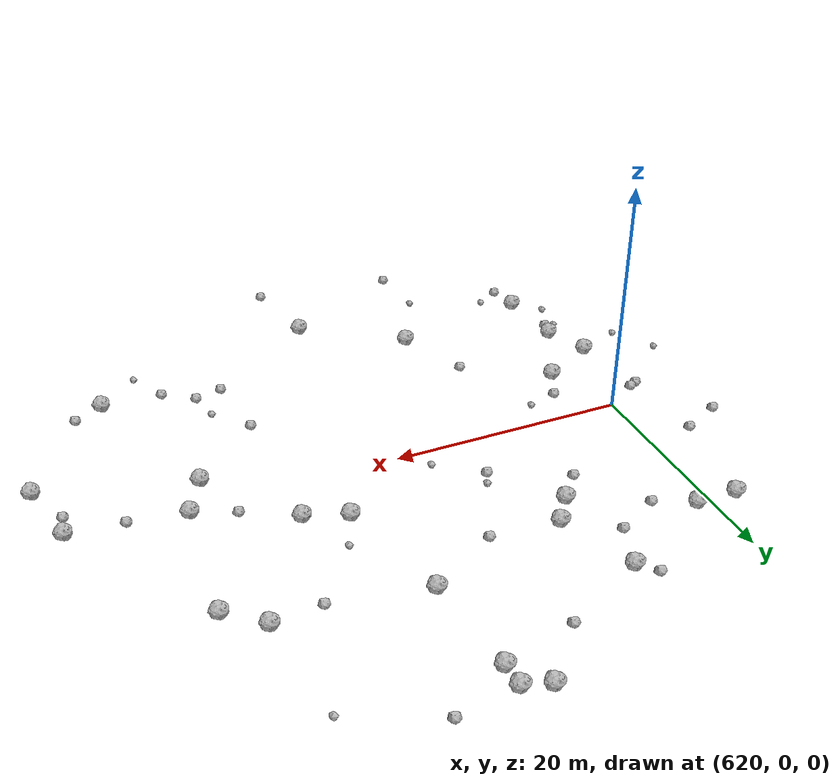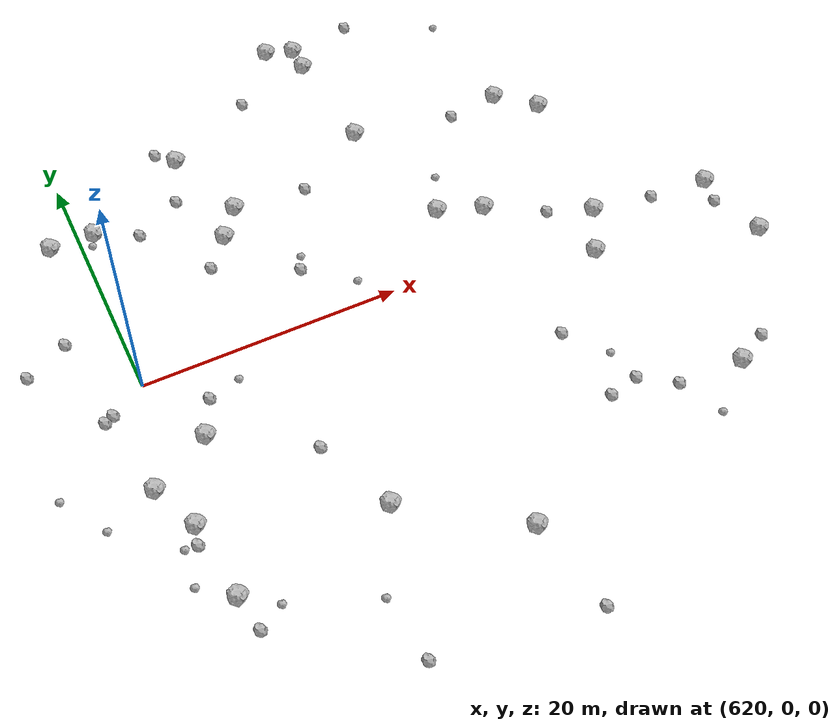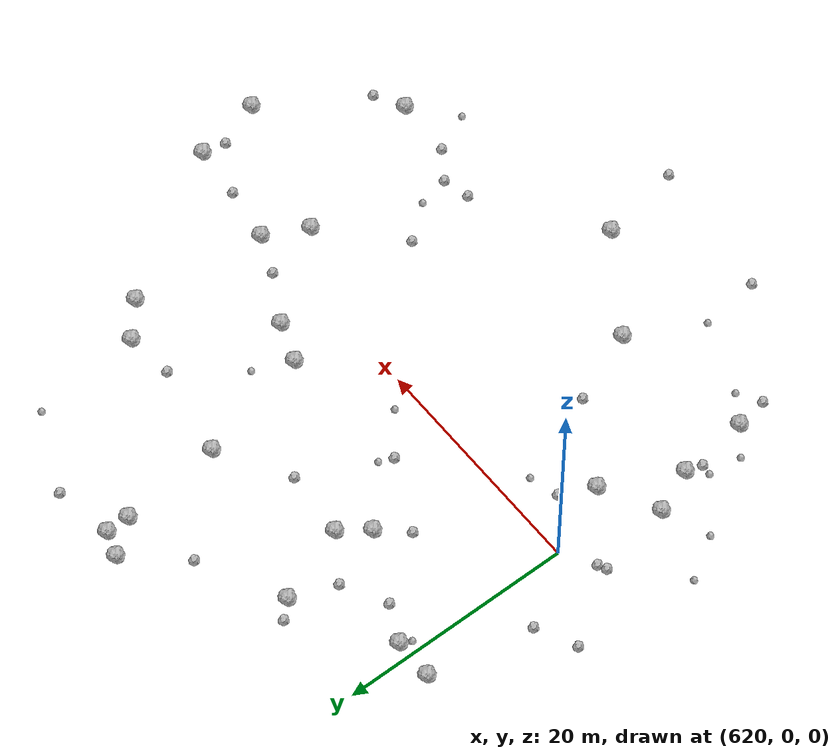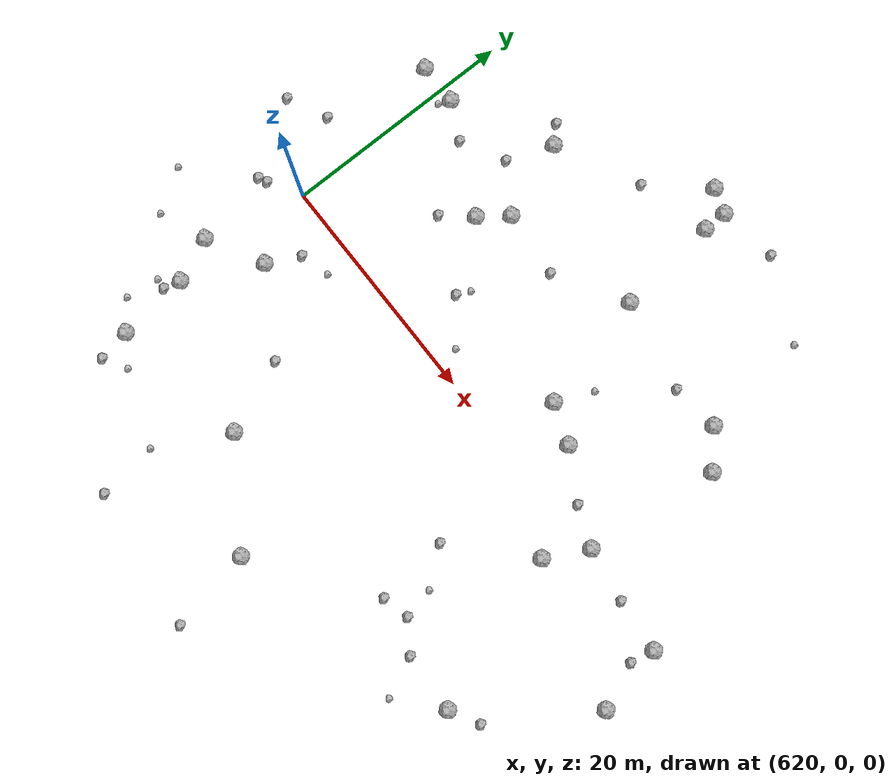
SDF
<sdf version="1.6">
 <world name="default">
  <include><uri>model://sun</uri></include>
  <model name="rock1_16_3">
   <include><uri>model://rock1</uri><pose>619.50246957743 -12.284722842281077 0.5 0 0 0</pose></include>
  </model>
  <model name="rock1_16_4">
   <include><uri>model://rock1</uri><pose>642.8708877441953 24.21478443247169 0.5 0 0 0</pose></include>
  </model>
  <model name="rock1_16_5">
   <include><uri>model://rock1</uri><pose>655.5129780728366 -3.2031607006495406 0.5 0 0 0</pose></include>
  </model>
  <model name="rock1_16_6">
   <include><uri>model://rock1</uri><pose>617.931315242425 -8.560792233907584 0.5 0 0 0</pose></include>
  </model>
  <model name="rock1_16_7">
   <include><uri>model://rock1</uri><pose>632.0664180737031 12.404886205247237 0.5 0 0 0</pose></include>
  </model>
  <model name="rock1_16_8">
   <include><uri>model://rock1</uri><pose>657.3818263120024 0.4045115208634229 0.5 0 0 0</pose></include>
  </model>
  <model name="rock1_16_9">
   <include><uri>model://rock1</uri><pose>620.144063395537 -18.355663517907434 0.5 0 0 0</pose></include>
  </model>
  <model name="rock1_16_10">
   <include><uri>model://rock1</uri><pose>655.8338261542239 14.417747060775277 0.5 0 0 0</pose></include>
  </model>
  <model name="rock1_16_11">
   <include><uri>model://rock1</uri><pose>643.7486379790425 15.499873581567194 0.5 0 0 0</pose></include>
  </model>
  <model name="rock1_16_12">
   <include><uri>model://rock1</uri><pose>640.3903474918646 -22.042270062142226 0.5 0 0 0</pose></include>
  </model>
  <model name="rock1_16_13">
   <include><uri>model://rock1</uri><pose>649.7327665309838 4.20892458357865 0.5 0 0 0</pose></include>
  </model>
  <model name="rock1_16_14">
   <include><uri>model://rock1</uri><pose>666.7485705954654 -0.7734943483179606 0.5 0 0 0</pose></include>
  </model>
  <model name="rock1_16_15">
   <include><uri>model://rock1</uri><pose>668.0074020674251 -6.689599194196749 0.5 0 0 0</pose></include>
  </model>
  <model name="rock1_16_16">
   <include><uri>model://rock1</uri><pose>658.6672957909252 11.935079782609208 0.5 0 0 0</pose></include>
  </model>
  <model name="rock1_16_17">
   <include><uri>model://rock1</uri><pose>646.2753339569658 5.470345640044876 0.5 0 0 0</pose></include>
  </model>
  <model name="rock1_16_18">
   <include><uri>model://rock1</uri><pose>622.6373727309693 -5.973755493576412 0.5 0 0 0</pose></include>
  </model>
  <model name="rock1_16_19">
   <include><uri>model://rock1</uri><pose>640.6871140789725 26.982607856242836 0.5 0 0 0</pose></include>
  </model>
  <model name="rock1_16_20">
   <include><uri>model://rock1</uri><pose>642.8247913918525 26.256021577200457 0.5 0 0 0</pose></include>
  </model>
  <model name="rock1_16_21">
   <include><uri>model://rock1</uri><pose>660.2051323613662 -16.532347225314812 0.5 0 0 0</pose></include>
  </model>
  <model name="rock1_16_22">
   <include><uri>model://rock1</uri><pose>632.1047252176302 -16.374434599432774 0.5 0 0 0</pose></include>
  </model>
  <model name="rock1_16_23">
   <include><uri>model://rock1</uri><pose>629.5963201401662 18.876356239251983 0.5 0 0 0</pose></include>
  </model>
  <model name="rock1_16_24">
   <include><uri>model://rock1</uri><pose>630.3127852623422 10.057531501323957 0.5 0 0 0</pose></include>
  </model>
  <model name="rock1_16_25">
   <include><uri>model://rock1</uri><pose>621.3080452825545 14.545405780375148 0.5 0 0 0</pose></include>
  </model>
  <model name="rock1_16_26">
   <include><uri>model://rock1</uri><pose>617.8306949269846 14.580982323100152 0.5 0 0 0</pose></include>
  </model>
  <model name="rock2_16_0">
   <include><uri>model://rock2</uri><pose>629.5224237065478 -10.22371659005227 0.3 0 0 0</pose></include>
  </model>
  <model name="rock2_16_1">
   <include><uri>model://rock2</uri><pose>634.3702317793054 4.750669061223498 0.3 0 0 0</pose></include>
  </model>
  <model name="rock2_16_2">
   <include><uri>model://rock2</uri><pose>641.6817784330325 -29.2001186551063 0.3 0 0 0</pose></include>
  </model>
  <model name="rock2_16_3">
   <include><uri>model://rock2</uri><pose>647.8735029397264 27.086893065812376 0.3 0 0 0</pose></include>
  </model>
  <model name="rock2_16_4">
   <include><uri>model://rock2</uri><pose>655.0194188823277 -16.286837554737318 0.3 0 0 0</pose></include>
  </model>
  <model name="rock2_16_5">
   <include><uri>model://rock2</uri><pose>619.0716409844272 -13.71798342415521 0.3 0 0 0</pose></include>
  </model>
  <model name="rock2_16_6">
   <include><uri>model://rock2</uri><pose>616.5237830455726 -1.975139057630912 0.3 0 0 0</pose></include>
  </model>
  <model name="rock2_16_7">
   <include><uri>model://rock2</uri><pose>612.6532106717117 4.026872121708976 0.3 0 0 0</pose></include>
  </model>
  <model name="rock2_16_8">
   <include><uri>model://rock2</uri><pose>652.4569010452615 -14.529608556260742 0.3 0 0 0</pose></include>
  </model>
  <model name="rock2_16_9">
   <include><uri>model://rock2</uri><pose>629.5064886815097 -27.63940943641422 0.3 0 0 0</pose></include>
  </model>
  <model name="rock2_16_10">
   <include><uri>model://rock2</uri><pose>628.247228202715 20.234664223598173 0.3 0 0 0</pose></include>
  </model>
  <model name="rock2_16_11">
   <include><uri>model://rock2</uri><pose>628.1103633223233 14.999489421244995 0.3 0 0 0</pose></include>
  </model>
  <model name="rock2_16_12">
   <include><uri>model://rock2</uri><pose>620.5633290877962 -21.143886607810153 0.3 0 0 0</pose></include>
  </model>
  <model name="rock2_16_13">
   <include><uri>model://rock2</uri><pose>653.9302508647555 1.7959405925523022 0.3 0 0 0</pose></include>
  </model>
  <model name="rock2_16_14">
   <include><uri>model://rock2</uri><pose>662.6935480175689 -15.198141870058485 0.3 0 0 0</pose></include>
  </model>
  <model name="rock2_16_15">
   <include><uri>model://rock2</uri><pose>666.3469684633623 -2.8023176499641487 0.3 0 0 0</pose></include>
  </model>
  <model name="rock2_16_16">
   <include><uri>model://rock2</uri><pose>616.0326641988089 5.662030369012371 0.3 0 0 0</pose></include>
  </model>
  <model name="rock2_16_17">
   <include><uri>model://rock2</uri><pose>617.2464097943812 -1.6149292952191772 0.3 0 0 0</pose></include>
  </model>
  <model name="rock2_16_18">
   <include><uri>model://rock2</uri><pose>628.2464506531753 7.737705857485835 0.3 0 0 0</pose></include>
  </model>
  <model name="rock2_16_19">
   <include><uri>model://rock2</uri><pose>662.0798504465328 -0.3343114830846403 0.3 0 0 0</pose></include>
  </model>
  <model name="rock2_16_20">
   <include><uri>model://rock2</uri><pose>649.4444307511064 -8.84034787699196 0.3 0 0 0</pose></include>
  </model>
  <model name="rock2_16_21">
   <include><uri>model://rock2</uri><pose>651.6437901876527 13.97617010213883 0.3 0 0 0</pose></include>
  </model>
  <model name="rock2_16_22">
   <include><uri>model://rock2</uri><pose>624.4158438700291 13.01987634799822 0.3 0 0 0</pose></include>
  </model>
  <model name="rock2_16_23">
   <include><uri>model://rock2</uri><pose>637.7713688985709 11.943698334940947 0.3 0 0 0</pose></include>
  </model>
  <model name="rock2_16_24">
   <include><uri>model://rock2</uri><pose>650.102135569424 -15.088641808542976 0.3 0 0 0</pose></include>
  </model>
  <model name="rock2_16_25">
   <include><uri>model://rock2</uri><pose>623.9563353714598 -3.1589227836651723 0.3 0 0 0</pose></include>
  </model>
  <model name="rock2_16_26">
   <include><uri>model://rock2</uri><pose>636.6401408207715 22.46621207439575 0.3 0 0 0</pose></include>
  </model>
  <model name="rock3_16_0">
   <include><uri>model://rock3</uri><pose>613.8843864815819 -10.178750854207042 0.2 0 0 0</pose></include>
  </model>
  <model name="rock3_16_1">
   <include><uri>model://rock3</uri><pose>622.5228206757162 -20.059582780380723 0.2 0 0 0</pose></include>
  </model>
  <model name="rock3_16_2">
   <include><uri>model://rock3</uri><pose>618.139237188039 -13.6816099129808 0.2 0 0 0</pose></include>
  </model>
  <model name="rock3_16_3">
   <include><uri>model://rock3</uri><pose>656.5861736556735 -19.691150528880797 0.2 0 0 0</pose></include>
  </model>
  <model name="rock3_16_4">
   <include><uri>model://rock3</uri><pose>628.8728994424623 -22.571415426947993 0.2 0 0 0</pose></include>
  </model>
  <model name="rock3_16_5">
   <include><uri>model://rock3</uri><pose>651.8625694485553 -11.883092540606349 0.2 0 0 0</pose></include>
  </model>
  <model name="rock3_16_6">
   <include><uri>model://rock3</uri><pose>620.8092766895618 13.571577051272072 0.2 0 0 0</pose></include>
  </model>
  <model name="rock3_16_7">
   <include><uri>model://rock3</uri><pose>611.6642663390976 -6.667063802056589 0.2 0 0 0</pose></include>
  </model>
  <model name="rock3_16_8">
   <include><uri>model://rock3</uri><pose>626.4688548428528 -2.4982671105243632 0.2 0 0 0</pose></include>
  </model>
  <model name="rock3_16_9">
   <include><uri>model://rock3</uri><pose>637.8629491612859 1.929943640555603 0.2 0 0 0</pose></include>
  </model>
  <model name="rock3_16_10">
   <include><uri>model://rock3</uri><pose>617.7720028857734 -16.55783482917106 0.2 0 0 0</pose></include>
  </model>
  <model name="rock3_16_11">
   <include><uri>model://rock3</uri><pose>634.8799248978719 5.88194114277406 0.2 0 0 0</pose></include>
  </model>
  <model name="rock3_16_12">
   <include><uri>model://rock3</uri><pose>654.7744145171163 23.834232553985572 0.2 0 0 0</pose></include>
  </model>
  <model name="rock3_16_13">
   <include><uri>model://rock3</uri><pose>647.6239462551116 8.652173299905016 0.2 0 0 0</pose></include>
  </model>
 </world>
</sdf>
